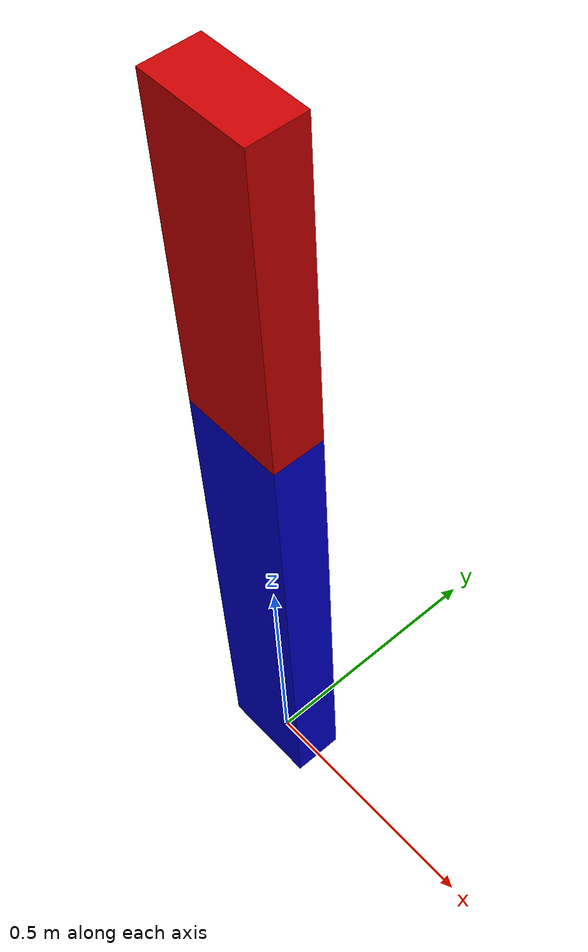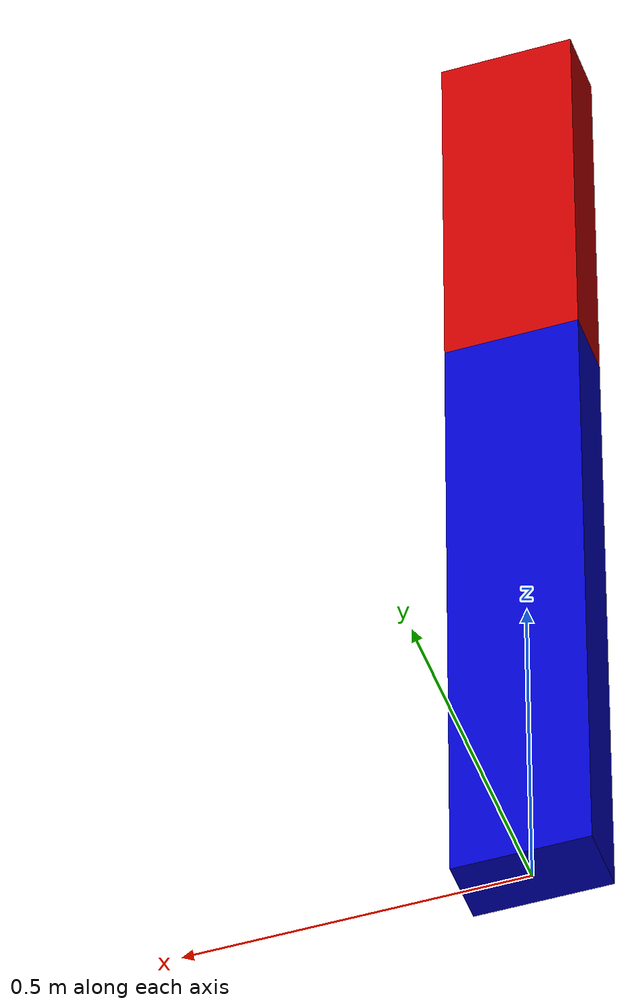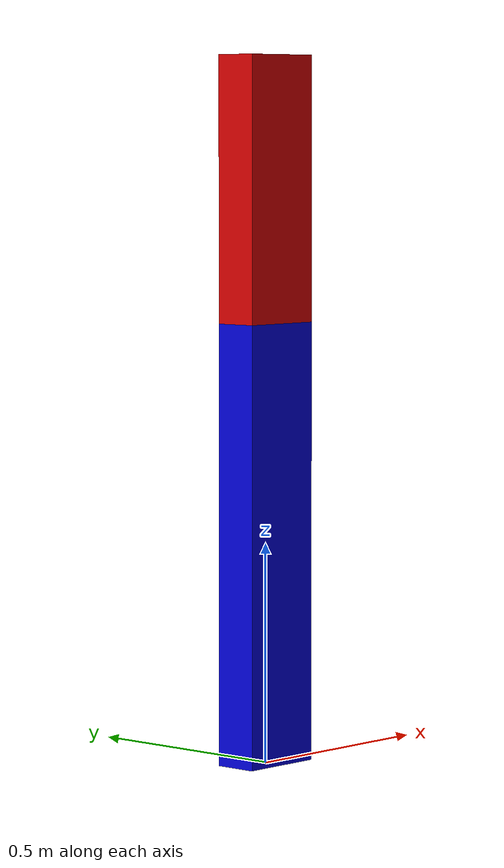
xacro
<?xml version="1.0"?>
<robot xmlns:xacro="http://www.ros.org/wiki/xacro" name="arm2">

  <xacro:property name="L1" value="1" />
  <xacro:property name="L2" value=".6" />
  <xacro:property name="pi" value="3.1415" />

  <xacro:property name="name" value="arm2r" />

  <xacro:macro name="default_inertial" params="mass">
    <inertial>
        <origin xyz="0 0 0" rpy="0 0 0" />
        <mass value="${mass}" />
        <inertia ixx="1.0" ixy="0.0" ixz="0.0"
           iyy="1.0" iyz="0.0"
           izz="1.0" />
    </inertial>
  </xacro:macro>

  <link name="base_link"/>

  <link name="first_link">
    <visual>
      <origin xyz="0 0 ${L1/2}" rpy="0 0 0" />
      <geometry>
         <box size="0.2 0.1 ${L1}"/>
      </geometry>
      <material name="blue">
        <color rgba="0 0 .8 1"/>
      </material>
    </visual>
    <collision>
      <origin xyz="0 0 ${L1/2}" rpy="0 0 0" />
      <geometry>
         <box size="${L1} .2 .1"/>
      </geometry>
    </collision>
    <xacro:default_inertial mass="10"/>
  </link>

  <link name="second_link">
    <visual>
      <origin xyz="0 0 ${L2/2}" rpy="0 0 0" />
      <geometry>
         <box size="0.2 0.1 ${L2}"/>
      </geometry>
      <material name="red">
        <color rgba="0.8 0 0 1"/>
      </material>
    </visual>
    <collision>
      <origin xyz="0 0 0" rpy="0 0 0" />
      <geometry>
         <box size=".2 .1 ${L2}"/>
      </geometry>
    </collision>
    <xacro:default_inertial mass="10"/>
  </link>

  <joint name="joint_base_first" type="revolute">
    <parent link="base_link"/>
    <child link="first_link"/>
    <origin xyz="0 0 0" rpy="0 0 0" />
    <axis xyz="1 0 0" />
    <limit lower="-${pi}" upper="${pi}" effort="10" velocity="1.0"/>
  </joint>

  <joint name="joint_first_second" type="revolute">
    <parent link="first_link"/>
    <child link="second_link"/>
    <origin xyz="0 0 ${L1}" rpy="0 0 0" />
    <axis xyz="1 0 0" />
    <limit lower="-${pi}" upper="${pi}" effort="10" velocity="1.0"/>
  </joint>
  <transmission name="${name}_tran1">
    <type>transmission_interface/SimpleTransmission</type>
    <robotNamespace>${name}</robotNamespace>
    <joint name="joint_base_first">
      <hardwareInterface>PositionJointInterface</hardwareInterface>
    </joint>
    <actuator name="${name}_motor1">
      <mechanicalReduction>1</mechanicalReduction>
    </actuator>
  </transmission>

  <transmission name="${name}_tran2">
    <type>transmission_interface/SimpleTransmission</type>
    <robotNamespace>${name}</robotNamespace>
    <joint name="joint_first_second">
      <hardwareInterface>PositionJointInterface</hardwareInterface>
    </joint>
    <actuator name="${name}_motor2">
      <mechanicalReduction>1</mechanicalReduction>
    </actuator>
  </transmission>
</robot>
